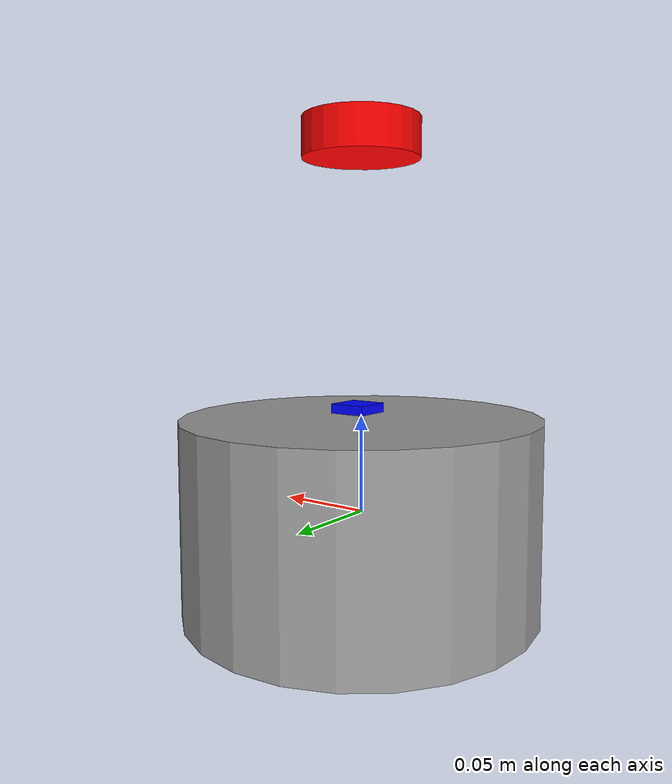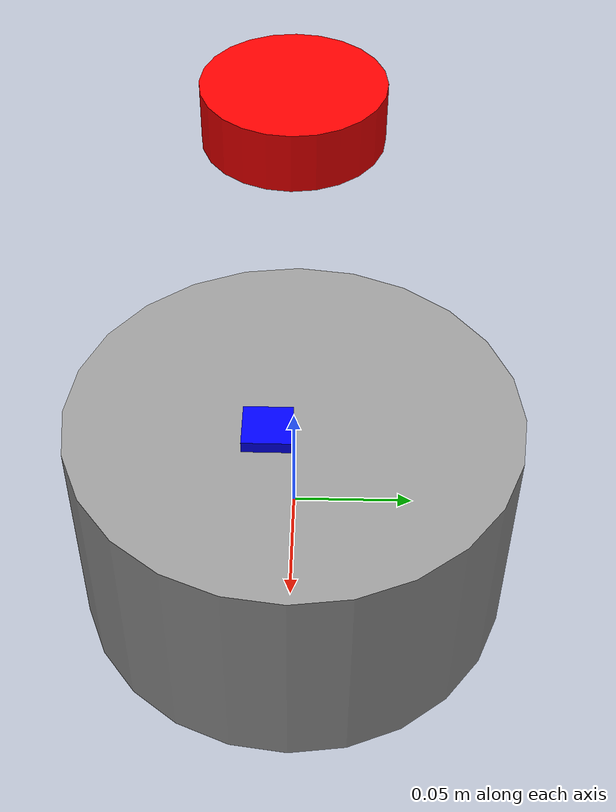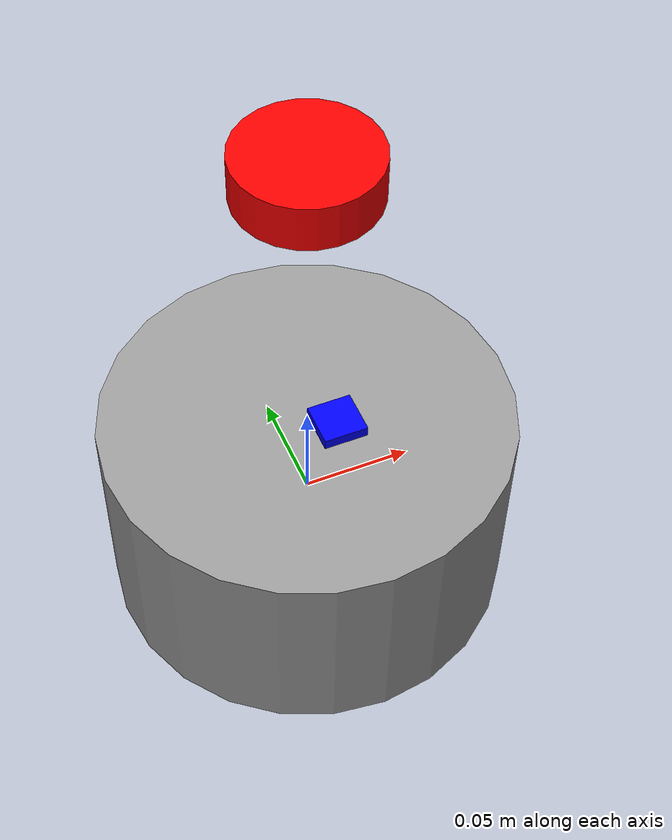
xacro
<?xml version="1.0"?>
<robot xmlns:xacro="http://ros.org/wiki/xacro" name="differential_swerve_bot">
  <xacro:property name="wheel_radius" value="0.03"/>
  <xacro:property name="wheel_width" value="0.02"/>
  <xacro:property name="body_radius" value="0.0925"/>
  <xacro:property name="body_height" value="0.1"/>
  <xacro:property name="lidar_height" value="0.19"/>

  <link name="base_link">
    <visual>
      <geometry>
        <cylinder radius="${body_radius}" length="${body_height}"/>
      </geometry>
      <material name="gray">
        <color rgba="0.6 0.6 0.6 1.0"/>
      </material>
    </visual>
    <collision>
      <geometry>
        <cylinder radius="${body_radius}" length="${body_height}"/>
      </geometry>
    </collision>
    <inertial>
      <mass value="5.0"/>
      <inertia ixx="0.1" ixy="0.0" ixz="0.0" iyy="0.1" iyz="0.0" izz="0.1"/>
      <origin xyz="0 0 0" rpy="0 0 0"/>
    </inertial>
  </link>

  <!-- Define wheels -->
  <xacro:macro name="swerve_wheel" params="name x y yaw">
    <joint name="${name}_joint" type="continuous">
      <parent link="base_link"/>
      <child link="${name}_link"/>
      <origin xyz="${x} ${y} 0" rpy="0 0 ${yaw}"/>
      <axis xyz="0 0 1"/>
    </joint>

    <link name="${name}_link">
      <visual>
        <geometry>
          <cylinder radius="${wheel_radius}" length="${wheel_width}"/>
        </geometry>
        <material name="black">
          <color rgba="0 0 0 1"/>
        </material>
      </visual>
      <collision>
        <geometry>
          <cylinder radius="${wheel_radius}" length="${wheel_width}"/>
        </geometry>
      </collision>
    </link>
  </xacro:macro>

  <!-- Front wheel -->
  <xacro:swerve_wheel name="front_wheel" x="0.051" y="0" yaw="0"/>
  <!-- Back right wheel (120 deg from front) -->
  <xacro:swerve_wheel name="rear_right_wheel" x="-0.0255" y="-0.0441" yaw="0"/>
  <!-- Back left wheel (240 deg from front) -->
  <xacro:swerve_wheel name="rear_left_wheel" x="-0.0255" y="0.0441" yaw="0"/>

  <!-- LIDAR -->
  <link name="lidar_link">
    <visual>
      <geometry>
        <cylinder radius="0.03" length="0.02"/>
      </geometry>
      <material name="red">
        <color rgba="1 0 0 1"/>
      </material>
    </visual>
  </link>
  <joint name="lidar_joint" type="fixed">
    <parent link="base_link"/>
    <child link="lidar_link"/>
    <origin xyz="0 0 ${lidar_height}" rpy="0 0 0"/>
  </joint>

  <!-- IMU -->
  <link name="imu_link">
    <visual>
      <geometry>
        <box size="0.02 0.02 0.01"/>
      </geometry>
      <material name="blue">
        <color rgba="0 0 1 1"/>
      </material>
    </visual>
  </link>
  <joint name="imu_joint" type="fixed">
    <parent link="base_link"/>
    <child link="imu_link"/>
    <origin xyz="0.01 -0.01 0.05" rpy="0 0 0"/>
  </joint>
</robot>
